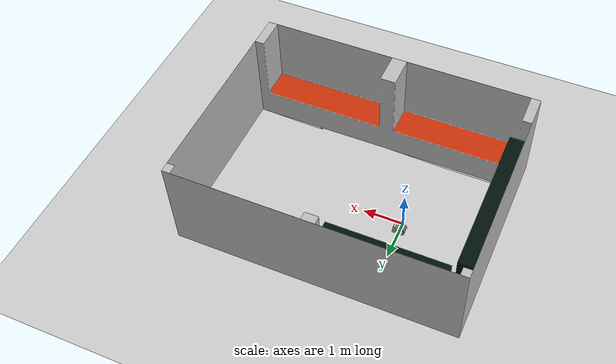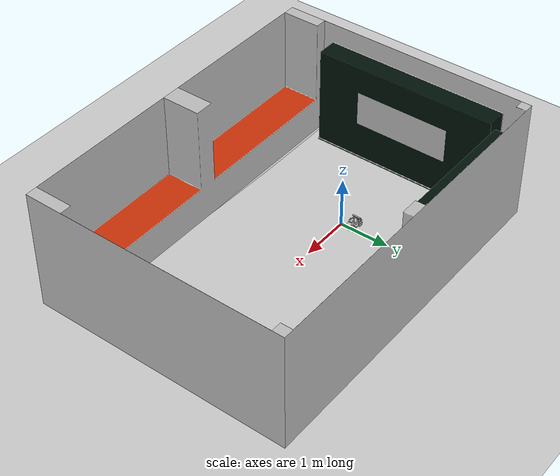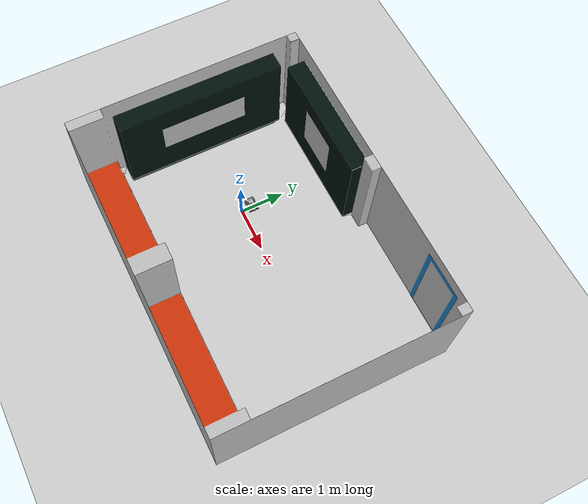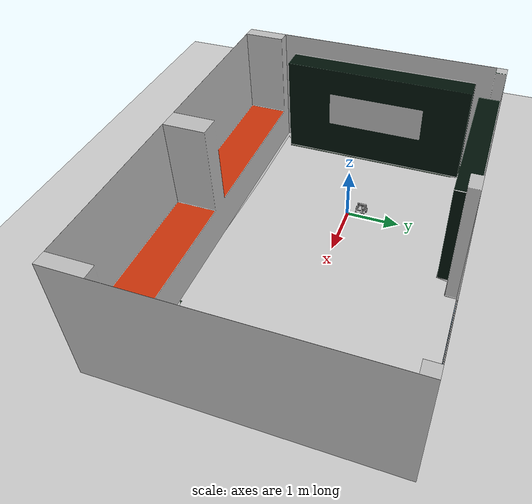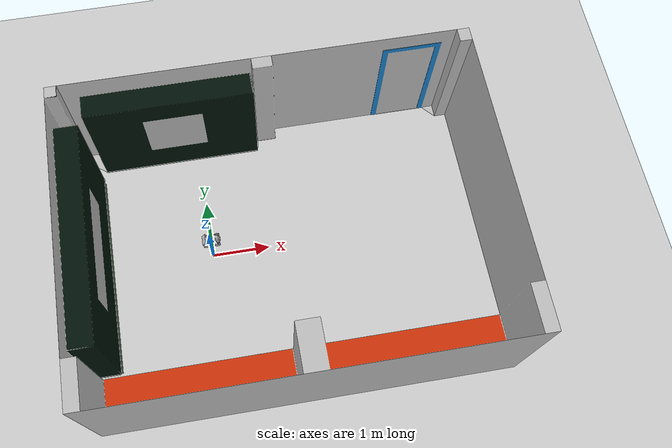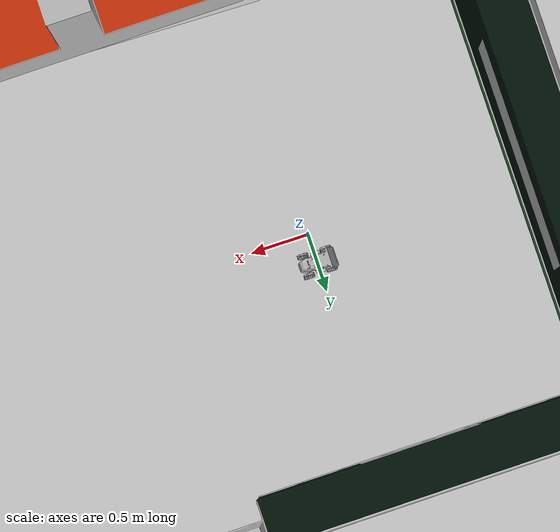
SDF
<?xml version="1.0"?>
<sdf version='1.9'>
  <world name='laboratorio'>
    <physics name='1ms' type='ignored'>
      <max_step_size>0.001</max_step_size>
      <real_time_factor>1</real_time_factor>
      <real_time_update_rate>1000</real_time_update_rate>
    </physics>
    <plugin name='ignition::gazebo::systems::Physics' filename='libignition-gazebo-physics-system.so'/>
    <plugin name='ignition::gazebo::systems::UserCommands' filename='libignition-gazebo-user-commands-system.so'/>
    <plugin name='ignition::gazebo::systems::SceneBroadcaster' filename='libignition-gazebo-scene-broadcaster-system.so'/>
    <plugin name='ignition::gazebo::systems::Contact' filename='libignition-gazebo-contact-system.so'/>
    <plugin name="ignition::gazebo::systems::Imu" filename="libignition-gazebo-imu-system.so"/>
    <plugin name="ignition::gazebo::systems::Sensors" filename="libignition-gazebo-sensors-system.so">
      <render_engine>ogre</render_engine>
    </plugin>
    <gravity>0 0 -9.8</gravity>
    <magnetic_field>6e-06 2.3e-05 -4.2e-05</magnetic_field>
    <atmosphere type='adiabatic'/>
    <scene>
      <ambient>0.4 0.4 0.4 1</ambient>
      <background>0.7 0.7 0.7 1</background>
      <shadows>true</shadows>
    </scene>
    <model name='ground_plane'>
      <static>true</static>
      <link name='link'>
        <collision name='collision'>
          <geometry>
            <plane>
              <normal>0 0 1</normal>
              <size>100 100</size>
            </plane>
          </geometry>
          <surface>
            <friction>
              <ode/>
            </friction>
            <bounce/>
            <contact/>
          </surface>
        </collision>
        <visual name='visual'>
          <geometry>
            <plane>
              <normal>0 0 1</normal>
              <size>100 100</size>
            </plane>
          </geometry>
          <material>
            <ambient>0.8 0.8 0.8 1</ambient>
            <diffuse>0.8 0.8 0.8 1</diffuse>
            <specular>0.8 0.8 0.8 1</specular>
          </material>
        </visual>
        <pose>0 0 0 0 -0 0</pose>
        <inertial>
          <pose>0 0 0 0 -0 0</pose>
          <mass>1</mass>
          <inertia>
            <ixx>1</ixx>
            <ixy>0</ixy>
            <ixz>0</ixz>
            <iyy>1</iyy>
            <iyz>0</iyz>
            <izz>1</izz>
          </inertia>
        </inertial>
        <enable_wind>false</enable_wind>
      </link>
      <pose>0 0 0 0 -0 0</pose>
      <self_collide>false</self_collide>
    </model>
    <!-- Limo -->
    <model name="limo_four_diff">
      <pose>0 0.25 0.053 0 0 0</pose>
      <include>
        <uri>model://Limo/limo_four_diff</uri>
      </include>
    </model>
    <!-- Lab -->
    <model name="laboratorio">
      <static>true</static>
      <pose>0 0 0 0 0 0</pose>
      <include>
        <uri>model://Laboratorio</uri>
      </include>
    </model>
    <!-- sun -->
    <light name='sun' type='directional'>
      <pose>0 0 10 0 -0 0</pose>
      <cast_shadows>true</cast_shadows>
      <intensity>1</intensity>
      <direction>-0.5 0.1 -0.9</direction>
      <diffuse>0.8 0.8 0.8 1</diffuse>
      <specular>0.2 0.2 0.2 1</specular>
      <attenuation>
        <range>1000</range>
        <linear>0.01</linear>
        <constant>0.90000000000000002</constant>
        <quadratic>0.001</quadratic>
      </attenuation>
      <spot>
        <inner_angle>0</inner_angle>
        <outer_angle>0</outer_angle>
        <falloff>0</falloff>
      </spot>
    </light>
  </world>
</sdf>

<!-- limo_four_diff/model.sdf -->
<sdf version='1.9'>
  <model name='limo_four_diff'>
    <link name='base_footprint'>
      <inertial>
        <pose>0 0 0.15 0 0 0</pose>
        <mass>2.1556999999999999</mass>
        <inertia>
          <ixx>0.23999999999999999</ixx>
          <ixy>0</ixy>
          <ixz>0</ixz>
          <iyy>0.95999999999999996</iyy>
          <iyz>0</iyz>
          <izz>0.95999999999999996</izz>
        </inertia>
      </inertial>
      <collision name='base_footprint_fixed_joint_lump__base_link_collision'>
        <pose>0 0 0.15 0 0 0</pose>
        <geometry>
          <box>
            <size>0.13 0.12 0.1</size>
          </box>
        </geometry>
      </collision>
      <visual name='base_footprint_fixed_joint_lump__base_link_visual'>
        <pose>0 0 0 0 0 1.57</pose>
        <geometry>
          <mesh>
            <scale>1 1 1</scale>
            <uri>file:///home/esparza/uned_tfg/ros2_ws/install/uned_limo_gazebo/share/uned_limo_gazebo/limo_description/meshes/limo_optimal.dae</uri>
          </mesh>
        </geometry>
      </visual>
    </link>
    <joint name='depth_camera_joint' type='revolute'>
      <pose relative_to='base_footprint'>0.08400000000000001 0 0.18 0 0 0</pose>
      <parent>base_footprint</parent>
      <child>depth_camera_link</child>
      <axis>
        <xyz>1 0 0</xyz>
        <limit>
          <lower>0</lower>
          <upper>0</upper>
          <effort>0</effort>
          <velocity>0</velocity>
        </limit>
        <dynamics>
          <spring_reference>0</spring_reference>
          <spring_stiffness>0</spring_stiffness>
        </dynamics>
      </axis>
    </joint>
    <link name='depth_camera_link'>
      <pose relative_to='depth_camera_joint'>0 0 0 0 0 0</pose>
      <inertial>
        <pose>0 0 0 0 0 0</pose>
        <mass>0.10000000000000001</mass>
        <inertia>
          <ixx>9.9999999999999995e-07</ixx>
          <ixy>0</ixy>
          <ixz>0</ixz>
          <iyy>9.9999999999999995e-07</iyy>
          <iyz>0</iyz>
          <izz>9.9999999999999995e-07</izz>
        </inertia>
      </inertial>
      <collision name='depth_camera_link_fixed_joint_lump__depth_camera_collision_collision'>
        <pose>0 0 0 0 0 0</pose>
        <geometry>
          <box>
            <size>0.02 0.06 0.015</size>
          </box>
        </geometry>
      </collision>
      <visual name='depth_camera_link_fixed_joint_lump__depth_camera_visual_visual'>
        <pose>0 0 0 0 0 0</pose>
        <geometry>
          <box>
            <size>0.02 0.06 0.015</size>
          </box>
        </geometry>
        <material>
          <diffuse>0.125 0.125 0.125 1</diffuse>
          <ambient>0.125 0.125 0.125 1</ambient>
        </material>
      </visual>
      <sensor name='sensor_camera' type='depth'>
        <pose>0.0 0.0 0.0 0.0 0.0 0.0</pose>
        <always_on>true</always_on>
        <visualize>true</visualize>
        <update_rate>10</update_rate>
        <topic>color/image_raw</topic>
        <camera name='head'>
          <camera_info_topic>color/camera_info</camera_info_topic>
          <horizontal_fov>1.3962634</horizontal_fov>
          <image>
            <width>640</width>
            <height>480</height>
            <format>R8G8B8</format>
          </image>
          <clip>
            <near>0.02</near>
            <far>300</far>
          </clip>
        </camera>
        <gz_frame_id>depth_link</gz_frame_id>
      </sensor>
    </link>
    <joint name='front_left_wheel' type='revolute'>
      <pose relative_to='base_footprint'>0.1 0.065 0.04999999999999999 0 0 0</pose>
      <parent>base_footprint</parent>
      <child>front_left_wheel_link</child>
      <axis>
        <xyz>0 1 0</xyz>
        <limit>
          <lower>-10000000000000000</lower>
          <upper>10000000000000000</upper>
          <effort>50</effort>
        </limit>
        <dynamics>
          <spring_reference>0</spring_reference>
          <spring_stiffness>0</spring_stiffness>
        </dynamics>
      </axis>
      <physics>
        <ode>
          <limit>
            <cfm>0</cfm>
            <erp>0.20000000000000001</erp>
          </limit>
        </ode>
      </physics>
    </joint>
    <link name='front_left_wheel_link'>
      <pose relative_to='front_left_wheel'>0 0 0 0 0 0</pose>
      <inertial>
        <pose>0 0 0 0 0 0</pose>
        <mass>0.5</mass>
        <inertia>
          <ixx>0.01055</ixx>
          <ixy>0</ixy>
          <ixz>0</ixz>
          <iyy>0.00075000000000000002</iyy>
          <iyz>0</iyz>
          <izz>0.01055</izz>
        </inertia>
      </inertial>
      <collision name='front_left_wheel_link_collision'>
        <pose>0 0.0225 0 1.57 0 0</pose>
        <geometry>
          <cylinder>
            <length>0.044999999999999998</length>
            <radius>0.044999999999999998</radius>
          </cylinder>
        </geometry>
        <surface>
          <friction>
            <ode>
              <mu>50</mu>
              <mu2>50</mu2>
              <fdir1>1 0 0</fdir1>
            </ode>
          </friction>
          <contact>
            <ode>
              <kp>10000000.0</kp>
              <kd>1.0</kd>
              <min_depth>0.01</min_depth>
            </ode>
          </contact>
        </surface>
        <maxContacts value="64"/>
      </collision>
      <visual name='front_left_wheel_link_visual'>
        <pose>0 0 0 0 0 0</pose>
        <geometry>
          <mesh>
            <scale>1 1 1</scale>
            <uri>file:///home/esparza/uned_tfg/ros2_ws/install/uned_limo_gazebo/share/uned_limo_gazebo/limo_description/meshes/limo_optimal_wheels.dae</uri>
          </mesh>
        </geometry>
      </visual>
    </link>
    <joint name='front_right_wheel' type='revolute'>
      <pose relative_to='base_footprint'>0.1 -0.065 0.04999999999999999 3.14159 0 0</pose>
      <parent>base_footprint</parent>
      <child>front_right_wheel_link</child>
      <axis>
        <xyz>0 -1 0</xyz>
        <limit>
          <lower>-10000000000000000</lower>
          <upper>10000000000000000</upper>
          <effort>50</effort>
        </limit>
        <dynamics>
          <spring_reference>0</spring_reference>
          <spring_stiffness>0</spring_stiffness>
        </dynamics>
      </axis>
      <physics>
        <ode>
          <limit>
            <cfm>0</cfm>
            <erp>0.20000000000000001</erp>
          </limit>
        </ode>
      </physics>
    </joint>
    <link name='front_right_wheel_link'>
      <pose relative_to='front_right_wheel'>0 0 0 0 0 0</pose>
      <inertial>
        <pose>0 0 0 0 0 0</pose>
        <mass>0.5</mass>
        <inertia>
          <ixx>0.01055</ixx>
          <ixy>0</ixy>
          <ixz>0</ixz>
          <iyy>0.00075000000000000002</iyy>
          <iyz>0</iyz>
          <izz>0.01055</izz>
        </inertia>
      </inertial>
      <collision name='front_right_wheel_link_collision'>
        <pose>0 0.0225 0 1.57 0 0</pose>
        <geometry>
          <cylinder>
            <length>0.044999999999999998</length>
            <radius>0.044999999999999998</radius>
          </cylinder>
        </geometry>
        <surface>
          <friction>
            <ode>
              <mu>50</mu>
              <mu2>50</mu2>
              <fdir1>1 0 0</fdir1>
            </ode>
          </friction>
          <contact>
            <ode>
              <kp>10000000.0</kp>
              <kd>1.0</kd>
              <min_depth>0.01</min_depth>
            </ode>
          </contact>
        </surface>
        <maxContacts value="64"/>
      </collision>
      <visual name='front_right_wheel_link_visual'>
        <pose>0 0 0 0 0 0</pose>
        <geometry>
          <mesh>
            <scale>1 1 1</scale>
            <uri>file:///home/esparza/uned_tfg/ros2_ws/install/uned_limo_gazebo/share/uned_limo_gazebo/limo_description/meshes/limo_optimal_wheels.dae</uri>
          </mesh>
        </geometry>
      </visual>
    </link>
    <joint name='imu_joint' type='revolute'>
      <pose relative_to='base_footprint'>0 0 0.04999999999999999 0 0 0</pose>
      <parent>base_footprint</parent>
      <child>imu_link</child>
      <axis>
        <xyz>1 0 0</xyz>
        <limit>
          <lower>0</lower>
          <upper>0</upper>
          <effort>0</effort>
          <velocity>0</velocity>
        </limit>
        <dynamics>
          <spring_reference>0</spring_reference>
          <spring_stiffness>0</spring_stiffness>
        </dynamics>
      </axis>
    </joint>
    <link name='imu_link'>
      <pose relative_to='imu_joint'>0 0 0 0 0 0</pose>
      <inertial>
        <pose>0 0 0 0 0 0</pose>
        <mass>0.01</mass>
        <inertia>
          <ixx>9.9999999999999995e-08</ixx>
          <ixy>0</ixy>
          <ixz>0</ixz>
          <iyy>9.9999999999999995e-08</iyy>
          <iyz>0</iyz>
          <izz>9.9999999999999995e-08</izz>
        </inertia>
      </inertial>
      <collision name='imu_link_fixed_joint_lump__imu_collision_collision'>
        <pose>0 0 0 0 0 0</pose>
        <geometry>
          <box>
            <size>0.001 0.001 0.001</size>
          </box>
        </geometry>
      </collision>
      <visual name='imu_link_fixed_joint_lump__imu_visual_visual'>
        <pose>0 0 0 0 0 0</pose>
        <geometry>
          <box>
            <size>0.001 0.001 0.001</size>
          </box>
        </geometry>
        <material>
          <diffuse>0.125 0.125 0.125 1</diffuse>
          <ambient>0.125 0.125 0.125 1</ambient>
        </material>
      </visual>
      <gravity>true</gravity>
      <sensor name='imu_sensor' type='imu'>
        <always_on>true</always_on>
        <update_rate>100</update_rate>
        <visualize>true</visualize>
        <topic>imu</topic>
        <pose>0 0 0 0 0 0</pose>
        <gz_frame_id>imu_link</gz_frame_id>
      </sensor>
    </link>
    <joint name='laser_joint' type='revolute'>
      <pose relative_to='base_footprint'>0.103 0 0.116 0 0 0</pose>
      <parent>base_footprint</parent>
      <child>laser_link</child>
      <axis>
        <xyz>1 0 0</xyz>
        <limit>
          <lower>0</lower>
          <upper>0</upper>
          <effort>0</effort>
          <velocity>0</velocity>
        </limit>
        <dynamics>
          <spring_reference>0</spring_reference>
          <spring_stiffness>0</spring_stiffness>
        </dynamics>
      </axis>
    </joint>
    <link name='laser_link'>
      <pose relative_to='laser_joint'>0 0 0 0 0 0</pose>
      <inertial>
        <pose>0 0 0 0 0 0</pose>
        <mass>0.10000000000000001</mass>
        <inertia>
          <ixx>9.9999999999999995e-07</ixx>
          <ixy>0</ixy>
          <ixz>0</ixz>
          <iyy>9.9999999999999995e-07</iyy>
          <iyz>0</iyz>
          <izz>9.9999999999999995e-07</izz>
        </inertia>
      </inertial>
      <collision name='laser_link_fixed_joint_lump__laser_collision_collision'>
        <pose>0 0 0 0 0 0</pose>
        <geometry>
          <cylinder>
            <length>0.016</length>
            <radius>0.032000000000000001</radius>
          </cylinder>
        </geometry>
      </collision>
      <visual name='laser_link_fixed_joint_lump__laser_visual_visual'>
        <pose>0 0 0 0 0 0</pose>
        <geometry>
          <cylinder>
            <length>0.01</length>
            <radius>0.02</radius>
          </cylinder>
        </geometry>
        <material>
          <diffuse>0.125 0.125 0.125 1</diffuse>
          <ambient>0.125 0.125 0.125 1</ambient>
        </material>
      </visual>
      <sensor name='laser_sensor' type='gpu_lidar'>
        <pose>0 0 0 0 0 0</pose>
        <visualize>false</visualize>
        <update_rate>8</update_rate>
        <topic>scan</topic>
        <lidar>
          <scan>
            <horizontal>
              <samples>720</samples>
              <resolution>1</resolution>
              <min_angle>-2.0943950400000002</min_angle>
              <max_angle>2.0943950400000002</max_angle>
            </horizontal>
          </scan>
          <range>
            <min>0.050000000000000003</min>
            <max>8</max>
            <resolution>0.01</resolution>
          </range>
          <noise>
            <type>gaussian</type>
            <mean>0</mean>
            <stddev>0.01</stddev>
          </noise>
        </lidar>
        <gz_frame_id>laser_link</gz_frame_id>
      </sensor>
    </link>
    <joint name='rear_left_wheel' type='revolute'>
      <pose relative_to='base_footprint'>-0.1 0.065 0.04999999999999999 0 0 0</pose>
      <parent>base_footprint</parent>
      <child>rear_left_wheel_link</child>
      <axis>
        <xyz>0 1 0</xyz>
        <limit>
          <lower>-10000000000000000</lower>
          <upper>10000000000000000</upper>
          <effort>50</effort>
        </limit>
        <dynamics>
          <spring_reference>0</spring_reference>
          <spring_stiffness>0</spring_stiffness>
        </dynamics>
      </axis>
      <physics>
        <ode>
          <limit>
            <cfm>0</cfm>
            <erp>0.20000000000000001</erp>
          </limit>
        </ode>
      </physics>
    </joint>
    <link name='rear_left_wheel_link'>
      <pose relative_to='rear_left_wheel'>0 0 0 0 0 0</pose>
      <inertial>
        <pose>0 0 0 0 0 0</pose>
        <mass>0.5</mass>
        <inertia>
          <ixx>0.01055</ixx>
          <ixy>0</ixy>
          <ixz>0</ixz>
          <iyy>0.00075000000000000002</iyy>
          <iyz>0</iyz>
          <izz>0.01055</izz>
        </inertia>
      </inertial>
      <collision name='rear_left_wheel_link_collision'>
        <pose>0 0.0225 0 1.57 0 0</pose>
        <geometry>
          <cylinder>
            <length>0.044999999999999998</length>
            <radius>0.044999999999999998</radius>
          </cylinder>
        </geometry>
        <surface>
          <friction>
            <ode>
              <mu>50</mu>
              <mu2>50</mu2>
              <fdir1>1 0 0</fdir1>
            </ode>
          </friction>
          <contact>
            <ode>
              <kp>10000000.0</kp>
              <kd>1.0</kd>
              <min_depth>0.01</min_depth>
            </ode>
          </contact>
        </surface>
        <maxContacts value="64"/>
      </collision>
      <visual name='rear_left_wheel_link_visual'>
        <pose>0 0 0 0 0 0</pose>
        <geometry>
          <mesh>
            <scale>1 1 1</scale>
            <uri>file:///home/esparza/uned_tfg/ros2_ws/install/uned_limo_gazebo/share/uned_limo_gazebo/limo_description/meshes/limo_optimal_wheels.dae</uri>
          </mesh>
        </geometry>
      </visual>
    </link>
    <joint name='rear_right_wheel' type='revolute'>
      <pose relative_to='base_footprint'>-0.1 -0.065 0.04999999999999999 3.14159 0 0</pose>
      <parent>base_footprint</parent>
      <child>rear_right_wheel_link</child>
      <axis>
        <xyz>0 -1 0</xyz>
        <limit>
          <lower>-10000000000000000</lower>
          <upper>10000000000000000</upper>
          <effort>50</effort>
        </limit>
        <dynamics>
          <spring_reference>0</spring_reference>
          <spring_stiffness>0</spring_stiffness>
        </dynamics>
      </axis>
      <physics>
        <ode>
          <limit>
            <cfm>0</cfm>
            <erp>0.20000000000000001</erp>
          </limit>
        </ode>
      </physics>
    </joint>
    <link name='rear_right_wheel_link'>
      <pose relative_to='rear_right_wheel'>0 0 0 0 0 0</pose>
      <inertial>
        <pose>0 0 0 0 0 0</pose>
        <mass>0.5</mass>
        <inertia>
          <ixx>0.01055</ixx>
          <ixy>0</ixy>
          <ixz>0</ixz>
          <iyy>0.00075000000000000002</iyy>
          <iyz>0</iyz>
          <izz>0.01055</izz>
        </inertia>
      </inertial>
      <collision name='rear_right_wheel_link_collision'>
        <pose>0 0.0225 0 1.57 0 0</pose>
        <geometry>
          <cylinder>
            <length>0.044999999999999998</length>
            <radius>0.044999999999999998</radius>
          </cylinder>
        </geometry>
        <surface>
          <friction>
            <ode>
              <mu>50</mu>
              <mu2>50</mu2>
              <fdir1>1 0 0</fdir1>
            </ode>
          </friction>
          <contact>
            <ode>
              <kp>10000000.0</kp>
              <kd>1.0</kd>
              <min_depth>0.01</min_depth>
            </ode>
          </contact>
        </surface>
        <maxContacts value="64"/>
      </collision>
      <visual name='rear_right_wheel_link_visual'>
        <pose>0 0 0 0 0 0</pose>
        <geometry>
          <mesh>
            <scale>1 1 1</scale>
            <uri>file:///home/esparza/uned_tfg/ros2_ws/install/uned_limo_gazebo/share/uned_limo_gazebo/limo_description/meshes/limo_optimal_wheels.dae</uri>
          </mesh>
        </geometry>
      </visual>
    </link>
    <plugin name='ignition::gazebo::systems::DiffDrive' filename='libignition-gazebo-diff-drive-system.so'>
      <left_joint>front_left_wheel</left_joint>
      <right_joint>front_right_wheel</right_joint>
      <left_joint>rear_left_wheel</left_joint>
      <right_joint>rear_right_wheel</right_joint>
      <wheelbase>0.2</wheelbase>
      <wheel_separation>0.172</wheel_separation>
      <wheel_radius>0.045</wheel_radius>
      <topic>cmd_vel</topic>
      <odom_topic>odom</odom_topic>
      <frame_id>odom</frame_id>
      <tf_topic>tf</tf_topic>
      <odom_publisher_frequency>30</odom_publisher_frequency>
      <child_frame_id>base_footprint</child_frame_id>
    </plugin>
    <plugin name='ignition::gazebo::systems::JointStatePublisher' filename='libignition-gazebo-joint-state-publisher-system.so'>
      <topic>joint_states</topic>
      <joint_name>front_left_wheel</joint_name>
      <joint_name>front_right_wheel</joint_name>
      <joint_name>rear_left_wheel</joint_name>
      <joint_name>rear_right_wheel</joint_name>
    </plugin>
    <frame name='inertial_joint' attached_to='base_link'>
      <pose>0 0 0 0 -0 0</pose>
    </frame>
    <frame name='inertial_link' attached_to='inertial_joint'/>
    <frame name='base_joint' attached_to='base_footprint'>
      <pose>0 0 0.15 0 -0 0</pose>
    </frame>
    <frame name='base_link' attached_to='base_joint'/>
    <frame name='depth_camera_to_camera_joint' attached_to='depth_camera_link'>
      <pose>0 0 0 -1.57079 -0 -1.57079</pose>
    </frame>
    <frame name='depth_link' attached_to='depth_camera_to_camera_joint'/>
  </model>
</sdf>

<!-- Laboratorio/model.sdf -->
<sdf version="1.9">
  <model name="laboratorio">
    <static>true</static>
    <link name="link">
      <collision name="collision">
        <geometry>
          <mesh>
            <scale>1 1 1</scale>
            <uri>model://Laboratorio/meshes/RoboticPark.dae</uri>
          </mesh>
        </geometry>
      </collision>
      <visual name="lab">
        <geometry>
          <mesh>
            <scale>1 1 1</scale>
            <uri>model://Laboratorio/meshes/RoboticPark.dae</uri>
          </mesh>
        </geometry>
      </visual>
    </link>
  </model>
</sdf>
